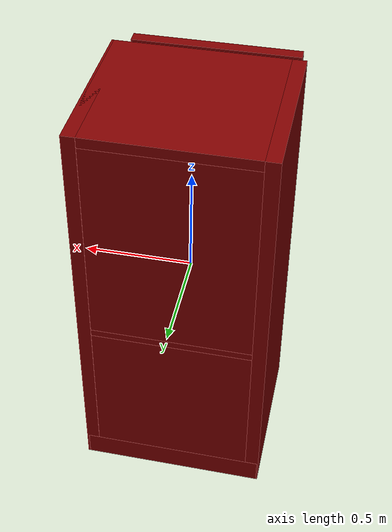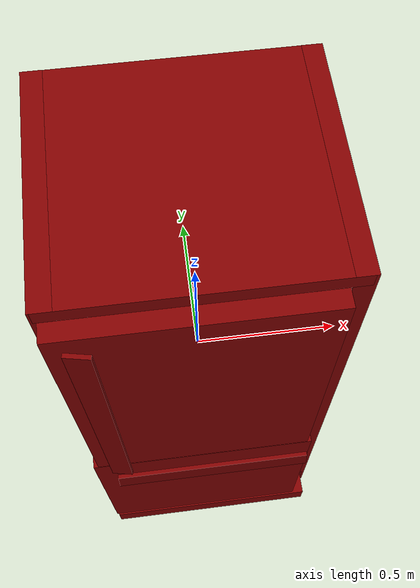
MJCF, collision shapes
<?xml version='1.0' encoding='UTF-8'?>
<mujoco model="model">
  <compiler angle="radian"/>
  <asset>
    <mesh file="visuals/Body001.obj" name="Body001_vis"/>
    <mesh file="visuals/Body002.obj" name="Body002_vis"/>
    <mesh file="visuals/Door001.obj" name="Door001_vis"/>
    <mesh file="visuals/Door001_Clear.obj" name="Door001_Clear_vis"/>
    <mesh file="visuals/Drawer001.obj" name="Drawer001_vis"/>
    <mesh file="visuals/Drawer002.obj" name="Drawer002_vis"/>
    <texture file="visuals/T_BC001.png" name="Body001_material" type="2d"/>
    <material name="Body001_material" rgba="1 1 1 1.0" texture="Body001_material" shininess="0.31350553035736084" specular="0.3103448502657381"/>
    <texture file="visuals/T_BC001.png" name="Body002_material" type="2d"/>
    <material name="Body002_material" rgba="1 1 1 1.0" texture="Body002_material" shininess="0.31350553035736084" specular="0.3103448502657381"/>
    <texture file="visuals/T_BC001.png" name="Door001_material" type="2d"/>
    <material name="Door001_material" rgba="1 1 1 1.0" texture="Door001_material" shininess="0.31350553035736084" specular="0.3103448502657381"/>
    <texture file="visuals/T_BC001.png" name="Drawer001_material" type="2d"/>
    <material name="Drawer001_material" rgba="1 1 1 1.0" texture="Drawer001_material" shininess="0.31350553035736084" specular="0.3103448502657381"/>
    <texture file="visuals/T_BC001.png" name="Drawer002_material" type="2d"/>
    <material name="Drawer002_material" rgba="1 1 1 1.0" texture="Drawer002_material" shininess="0.31350553035736084" specular="0.3103448502657381"/>
    <material name="Door001_Clear_material" rgba="0.800000011920929 0.800000011920929 0.800000011920929 0.08733627200126648" shininess="0.5" specular="0.3103448502657381"/>
  </asset>
  <default>
    <default class="visual">
      <geom conaffinity="0" contype="0" group="1" type="mesh"/>
    </default>
    <default class="collision">
      <geom group="0" rgba="0.5 0 0 0.5"/>
    </default>
    <default class="spawn">
      <geom group="0" rgba="1 1 1 0.5" contype="0" conaffinity="0"/>
      <site group="0" rgba="1 1 1 0.5"/>
    </default>
    <default class="region">
      <geom group="1" conaffinity="0" contype="0" rgba="0 1 0 0"/>
    </default>
  </default>
  <worldbody>
    <body>
      <body name="object">
        <geom mesh="Body001_vis" type="mesh" solimp="0.998 0.998 0.001" solref="0.001 1" density="100" friction="0.95 0.3 0.1" class="visual" material="Body001_material"/>
        <geom class="collision" type="box" pos="-0.3940710127353668 0.06275410205125809 -0.0006774307112209499" size="0.031181402504444122 0.37738826870918274 0.9359207153320312" quat="1.0 0.0 0.0 0.0"/>
        <geom class="collision" type="box" pos="0.3919791281223297 0.06275410950183868 -0.0006774307112209499" size="0.030255861580371857 0.3773885667324066 0.9359207153320312" quat="1.0 0.0 0.0 0.0"/>
        <geom class="collision" type="box" pos="-0.003005377249792218 0.06247815489768982 0.9109719395637512" size="0.4162082374095917 0.37711286544799805 0.024271223694086075" quat="1.0 0.0 0.0 0.0"/>
        <geom class="collision" type="box" pos="-0.003005377249792218 0.4117155075073242 -0.0009676485788077116" size="0.4162082374095917 0.027595268562436104 0.9359143972396851" quat="1.0 0.0 0.0 0.0"/>
        <geom class="collision" type="box" pos="-0.003005377249792218 0.06275410950183868 -0.8789532780647278" size="0.4162082374095917 0.3773896396160126 0.05723448842763901" quat="1.0 0.0 0.0 0.0"/>
        <geom class="collision" type="box" pos="-0.003005377249792218 -0.35098278522491455 -0.8917291760444641" size="0.4084376096725464 0.0465230792760849 0.0444585345685482" quat="1.0 0.0 0.0 0.0"/>
        <body name="Body002">
          <geom mesh="Body002_vis" type="mesh" solimp="0.998 0.998 0.001" solref="0.001 1" density="100" friction="0.95 0.3 0.1" class="visual" material="Body002_material"/>
          <geom class="collision" type="box" pos="-0.0014342060312628746 0.09791933000087738 0.5651807188987732" size="0.3656265139579773 0.2948967516422272 0.008134711533784866" quat="1.0 0.0 0.0 0.0"/>
          <geom class="collision" type="box" pos="-0.001195636112242937 0.04632935672998428 0.24166375398635864" size="0.3633967638015747 0.3461066484451294 0.00927546713501215" quat="1.0 0.0 0.0 0.0"/>
          <geom class="collision" type="box" pos="-0.001195636112242937 0.059925638139247894 -0.10092896223068237" size="0.3633967638015747 0.3794723451137543 0.017055664211511612" quat="1.0 0.0 0.0 0.0"/>
        </body>
        <body name="Door001">
          <joint axis="0.0 0.0 1.0" pos="0.3793938457965851 -0.3540734648704529 0.4236448109149933" limited="true" name="Door001_joint" range="0.0 1.5707963267948966" type="hinge" damping="1" frictionloss="1" armature=".01" stiffness="0.05"/>
          <geom mesh="Door001_vis" type="mesh" solimp="0.998 0.998 0.001" solref="0.001 1" density="100" friction="0.95 0.3 0.1" class="visual" material="Door001_material"/>
          <geom class="collision" type="box" pos="-0.02830483205616474 -0.3667275309562683 0.4207412898540497" size="0.3724071681499481 0.02750129997730255 0.5125665664672852" quat="1.0 0.0 0.0 0.0"/>
          <geom class="collision" type="box" pos="-0.3156786859035492 -0.42462262511253357 0.4115767180919647" size="0.03464058041572571 0.006546389311552048 0.4979086220264435" quat="0.9950294494628906 0.0 0.0 -0.09958113729953766"/>
          <body name="Door001_Clear">
            <geom mesh="Door001_Clear_vis" type="mesh" solimp="0.998 0.998 0.001" solref="0.001 1" density="100" friction="0.95 0.3 0.1" class="visual" material="Door001_Clear_material"/>
            <geom class="collision" type="box" pos="0.3027845323085785 -0.24827545881271362 0.37747132778167725" size="0.005082062911242247 0.08504998683929443 0.0777270495891571" quat="1.0 0.0 0.0 0.0"/>
            <geom class="collision" type="box" pos="-0.3163357377052307 -0.24827545881271362 0.37747135758399963" size="0.005082057788968086 0.08504989743232727 0.07772698253393173" quat="1.0 0.0 0.0 0.0"/>
            <geom class="collision" type="box" pos="-0.007146106101572514 -0.24822264909744263 0.3075364828109741" size="0.31459107995033264 0.07752437889575958 0.00779131893068552" quat="1.0 0.0 0.0 0.0"/>
            <geom class="collision" type="box" pos="-0.007146095857024193 -0.16828928887844086 0.37747135758399963" size="0.3145938515663147 0.004805755335837603 0.0777268260717392" quat="1.0 0.0 0.0 0.0"/>
            <geom class="collision" type="box" pos="-0.007146095857024193 -0.16828928887844086 0.6888020634651184" size="0.31459343433380127 0.004805749747902155 0.07772675156593323" quat="1.0 0.0 0.0 0.0"/>
            <geom class="collision" type="box" pos="-0.007146106101572514 -0.24822264909744263 0.6188671588897705" size="0.31459107995033264 0.07752411812543869 0.00779131893068552" quat="1.0 0.0 0.0 0.0"/>
            <geom class="collision" type="box" pos="-0.3163357377052307 -0.24827545881271362 0.6888020634651184" size="0.005082026589661837 0.08504942059516907 0.07772659510374069" quat="1.0 0.0 0.0 0.0"/>
            <geom class="collision" type="box" pos="0.3027845323085785 -0.24827545881271362 0.6888020038604736" size="0.00508201913908124 0.08504932373762131 0.07772649824619293" quat="1.0 0.0 0.0 0.0"/>
          </body>
        </body>
        <body name="Drawer001">
          <joint axis="0.0 -1.0 0.0" pos="-0.022611111402511597 0.04361245781183243 0.03509211167693138" limited="true" name="Drawer001_joint" range="0.0 0.45" type="slide" damping="1" frictionloss="1" armature=".01" stiffness="0.05"/>
          <geom mesh="Drawer001_vis" type="mesh" solimp="0.998 0.998 0.001" solref="0.001 1" density="100" friction="0.95 0.3 0.1" class="visual" material="Drawer001_material"/>
          <geom class="collision" type="box" pos="-0.02497066743671894 -0.28286805748939514 0.032526299357414246" size="0.3206898868083954 0.004805822391062975 0.10691582411527634" quat="1.0 0.0 0.0 0.0"/>
          <geom class="collision" type="box" pos="-0.02497066743671894 0.35859888792037964 0.032526299357414246" size="0.32068946957588196 0.004805815871804953 0.10691565275192261" quat="1.0 0.0 0.0 0.0"/>
          <geom class="collision" type="box" pos="-0.02497066743671894 0.03844917565584183 -0.06659462302923203" size="0.3206806480884552 0.31774669885635376 0.007791309151798487" quat="1.0 0.0 0.0 0.0"/>
          <geom class="collision" type="box" pos="-0.3402498960494995 0.03839649632573128 0.032526299357414246" size="0.005082127638161182 0.3252722918987274 0.10691531002521515" quat="1.0 0.0 0.0 0.0"/>
          <geom class="collision" type="box" pos="0.2910495400428772 0.03839649632573128 0.032526299357414246" size="0.005082123447209597 0.325271874666214 0.10691513866186142" quat="1.0 0.0 0.0 0.0"/>
        </body>
        <body name="Drawer002">
          <joint axis="0.0 -1.0 0.0" pos="-7.969141006469727e-05 -0.03420105576515198 -0.4718346893787384" limited="true" name="Drawer002_joint" range="0.0 0.5" type="slide" damping="1" frictionloss="1" armature=".01" stiffness="0.05"/>
          <geom mesh="Drawer002_vis" type="mesh" solimp="0.998 0.998 0.001" solref="0.001 1" density="100" friction="0.95 0.3 0.1" class="visual" material="Drawer002_material"/>
          <geom class="collision" type="box" pos="-0.0011914935894310474 0.3628953993320465 -0.48247089982032776" size="0.341813325881958 0.004805789794772863 0.3093748092651367" quat="1.0 0.0 0.0 0.0"/>
          <geom class="collision" type="box" pos="-0.010098197497427464 -0.00039964914321899414 -0.7799317240715027" size="0.32364463806152344 0.3330284655094147 0.017229238525032997" quat="1.0 0.0 0.0 0.0"/>
          <geom class="collision" type="box" pos="-0.33811312913894653 0.0170903243124485 -0.4841383993625641" size="0.005082099698483944 0.3525598347187042 0.307706743478775" quat="1.0 0.0 0.0 0.0"/>
          <geom class="collision" type="box" pos="0.33599114418029785 0.013876717537641525 -0.48419347405433655" size="0.0050820945762097836 0.3493458032608032 0.3076513707637787" quat="1.0 0.0 0.0 0.0"/>
          <geom class="collision" type="box" pos="-0.02944262884557247 -0.3667554259300232 -0.4704700708389282" size="0.38856837153434753 0.026475509628653526 0.36812254786491394" quat="1.0 0.0 0.0 0.0"/>
          <geom class="collision" type="box" pos="-0.0011914935894310474 -0.33533552289009094 -0.48247089982032776" size="0.34181052446365356 0.004805746953934431 0.30937305092811584" quat="1.0 0.0 0.0 0.0"/>
          <geom class="collision" type="box" pos="0.0007595455390401185 -0.43163663148880005 -0.16591814160346985" size="0.031590551137924194 0.007566715590655804 0.3390676975250244" quat="0.7045928239822388 -0.05957247316837311 0.7045928835868835 -0.059572722762823105"/>
        </body>
        <geom class="region" name="reg_main" type="box" pos="0.0 0.02290348708629608 0.0" size="0.42529571056365967 0.4173002243041992 0.9352431297302246"/>
      </body>
    </body>
  </worldbody>
  <actuator>
    <motor name="Door001_joint_actuator" joint="Door001_joint" gear="50"/>
    <motor name="Drawer001_joint_actuator" joint="Drawer001_joint" gear="50"/>
    <motor name="Drawer002_joint_actuator" joint="Drawer002_joint" gear="50"/>
  </actuator>
</mujoco>
